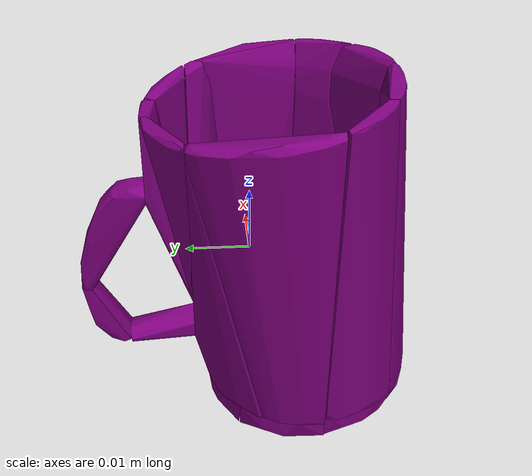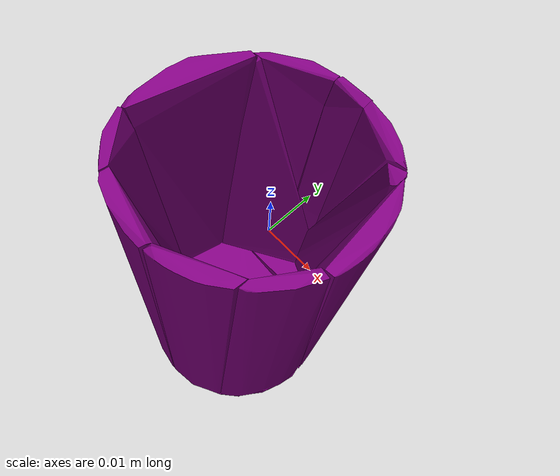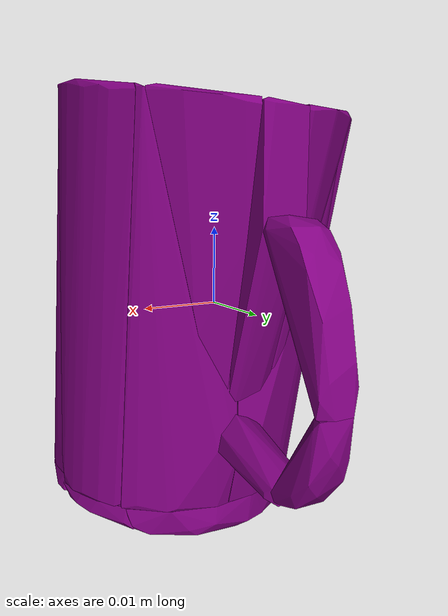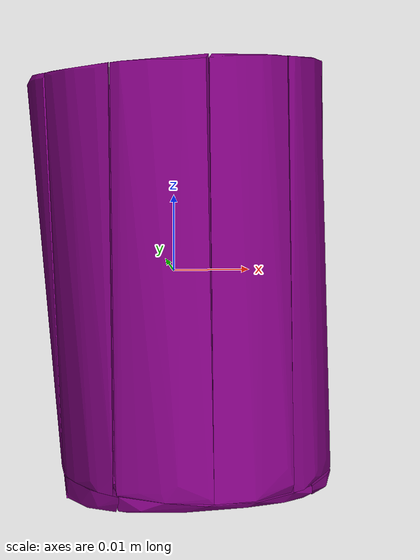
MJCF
<mujoco model="FlowerCup">
  <asset>
    <mesh file="meshes/FlowerCup/FlowerCup_0.stl" name="FlowerCup_0" scale="1.2 1.2 1.2"/>
    <mesh file="meshes/FlowerCup/FlowerCup_1.stl" name="FlowerCup_1" scale="1.2 1.2 1.2"/>
    <mesh file="meshes/FlowerCup/FlowerCup_2.stl" name="FlowerCup_2" scale="1.2 1.2 1.2"/>
    <mesh file="meshes/FlowerCup/FlowerCup_3.stl" name="FlowerCup_3" scale="1.2 1.2 1.2"/>
    <mesh file="meshes/FlowerCup/FlowerCup_4.stl" name="FlowerCup_4" scale="1.2 1.2 1.2"/>
    <mesh file="meshes/FlowerCup/FlowerCup_5.stl" name="FlowerCup_5" scale="1.2 1.2 1.2"/>
    <mesh file="meshes/FlowerCup/FlowerCup_6.stl" name="FlowerCup_6" scale="1.2 1.2 1.2"/>
    <mesh file="meshes/FlowerCup/FlowerCup_7.stl" name="FlowerCup_7" scale="1.2 1.2 1.2"/>
    <mesh file="meshes/FlowerCup/FlowerCup_8.stl" name="FlowerCup_8" scale="1.2 1.2 1.2"/>
    <mesh file="meshes/FlowerCup/FlowerCup_9.stl" name="FlowerCup_9" scale="1.2 1.2 1.2"/>
    <mesh file="meshes/FlowerCup/FlowerCup_10.stl" name="FlowerCup_10" scale="1.2 1.2 1.2"/>
    <mesh file="meshes/FlowerCup/FlowerCup_11.stl" name="FlowerCup_11" scale="1.2 1.2 1.2"/>
    <mesh file="meshes/FlowerCup/FlowerCup_12.stl" name="FlowerCup_12" scale="1.2 1.2 1.2"/>
    <mesh file="meshes/FlowerCup/FlowerCup_13.stl" name="FlowerCup_13" scale="1.2 1.2 1.2"/>
    <mesh file="meshes/FlowerCup/FlowerCup_14.stl" name="FlowerCup_14" scale="1.2 1.2 1.2"/>
    <mesh file="meshes/FlowerCup/FlowerCup_15.stl" name="FlowerCup_15" scale="1.2 1.2 1.2"/>
    <mesh file="meshes/FlowerCup/FlowerCup_16.stl" name="FlowerCup_16" scale="1.2 1.2 1.2"/>
    <mesh file="meshes/FlowerCup/FlowerCup_17.stl" name="FlowerCup_17" scale="1.2 1.2 1.2"/>
    <mesh file="meshes/FlowerCup/FlowerCup_18.stl" name="FlowerCup_18" scale="1.2 1.2 1.2"/>
    <mesh file="meshes/FlowerCup/FlowerCup_19.stl" name="FlowerCup_19" scale="1.2 1.2 1.2"/>
    <texture file="../textures/flowercup_0.png" name="tex-flowercup" />
    <material name="ceramic" reflectance="0.7" texrepeat="15 15" texture="tex-flowercup" texuniform="true"/>
  </asset>
  <worldbody>
    <body>
      <body name="collision">
        <geom condim="4" density="100" friction="1.8 0.3 0.1" group="1" mesh="FlowerCup_0" pos="0 0 0" solimp="0.998 0.998 0.001" solref="0.002 1" type="mesh" rgba="0.5 0 0.5 1"/>
        <geom condim="4" density="100" friction="1.8 0.3 0.1" group="1" mesh="FlowerCup_1" pos="0 0 0" solimp="0.998 0.998 0.001" solref="0.002 1" type="mesh" rgba="0.5 0 0.5 1"/>
        <geom condim="4" density="100" friction="1.8 0.3 0.1" group="1" mesh="FlowerCup_2" pos="0 0 0" solimp="0.998 0.998 0.001" solref="0.002 1" type="mesh" rgba="0.5 0 0.5 1"/>
        <geom condim="4" density="100" friction="1.8 0.3 0.1" group="1" mesh="FlowerCup_3" pos="0 0 0" solimp="0.998 0.998 0.001" solref="0.002 1" type="mesh" rgba="0.5 0 0.5 1"/>
        <geom condim="4" density="100" friction="1.8 0.3 0.1" group="1" mesh="FlowerCup_4" pos="0 0 0" solimp="0.998 0.998 0.001" solref="0.002 1" type="mesh" rgba="0.5 0 0.5 1"/>
        <geom condim="4" density="100" friction="1.8 0.3 0.1" group="1" mesh="FlowerCup_5" pos="0 0 0" solimp="0.998 0.998 0.001" solref="0.002 1" type="mesh" rgba="0.5 0 0.5 1"/>
        <geom condim="4" density="100" friction="1.8 0.3 0.1" group="1" mesh="FlowerCup_6" pos="0 0 0" solimp="0.998 0.998 0.001" solref="0.002 1" type="mesh" rgba="0.5 0 0.5 1"/>
        <geom condim="4" density="100" friction="1.8 0.3 0.1" group="1" mesh="FlowerCup_7" pos="0 0 0" solimp="0.998 0.998 0.001" solref="0.002 1" type="mesh" rgba="0.5 0 0.5 1"/>
        <geom condim="4" density="100" friction="1.8 0.3 0.1" group="1" mesh="FlowerCup_8" pos="0 0 0" solimp="0.998 0.998 0.001" solref="0.002 1" type="mesh" rgba="0.5 0 0.5 1"/>
        <geom condim="4" density="100" friction="1.8 0.3 0.1" group="1" mesh="FlowerCup_9" pos="0 0 0" solimp="0.998 0.998 0.001" solref="0.002 1" type="mesh" rgba="0.5 0 0.5 1"/>
        <geom condim="4" density="100" friction="1.8 0.3 0.1" group="1" mesh="FlowerCup_10" pos="0 0 0" solimp="0.998 0.998 0.001" solref="0.002 1" type="mesh" rgba="0.5 0 0.5 1"/>
        <geom condim="4" density="100" friction="1.8 0.3 0.1" group="1" mesh="FlowerCup_11" pos="0 0 0" solimp="0.998 0.998 0.001" solref="0.002 1" type="mesh" rgba="0.5 0 0.5 1"/>
        <geom condim="4" density="100" friction="1.8 0.3 0.1" group="1" mesh="FlowerCup_12" pos="0 0 0" solimp="0.998 0.998 0.001" solref="0.002 1" type="mesh" rgba="0.5 0 0.5 1"/>
        <geom condim="4" density="100" friction="1.8 0.3 0.1" group="1" mesh="FlowerCup_13" pos="0 0 0" solimp="0.998 0.998 0.001" solref="0.002 1" type="mesh" rgba="0.5 0 0.5 1"/>
        <geom condim="4" density="100" friction="1.8 0.3 0.1" group="1" mesh="FlowerCup_14" pos="0 0 0" solimp="0.998 0.998 0.001" solref="0.002 1" type="mesh" rgba="0.5 0 0.5 1"/>
        <geom condim="4" density="100" friction="1.8 0.3 0.1" group="1" mesh="FlowerCup_15" pos="0 0 0" solimp="0.998 0.998 0.001" solref="0.002 1" type="mesh" rgba="0.5 0 0.5 1"/>
        <geom condim="4" density="100" friction="1.8 0.3 0.1" group="1" mesh="FlowerCup_16" pos="0 0 0" solimp="0.998 0.998 0.001" solref="0.002 1" type="mesh" rgba="0.5 0 0.5 1"/>
        <geom condim="4" density="100" friction="1.8 0.3 0.1" group="1" mesh="FlowerCup_17" pos="0 0 0" solimp="0.998 0.998 0.001" solref="0.002 1" type="mesh" rgba="0.5 0 0.5 1"/>
        <geom condim="4" density="100" friction="1.8 0.3 0.1" group="1" mesh="FlowerCup_18" pos="0 0 0" solimp="0.998 0.998 0.001" solref="0.002 1" type="mesh" rgba="0.5 0 0.5 1"/>
        <geom condim="4" density="100" friction="1.8 0.3 0.1" group="1" mesh="FlowerCup_19" pos="0 0 0" solimp="0.998 0.998 0.001" solref="0.002 1" type="mesh" rgba="0.5 0 0.5 1"/>
      </body>
      <body name="visual">
        <geom conaffinity="0" contype="0" group="0" mass="0.0001" mesh="FlowerCup_0" pos="0 0 0" rgba="0 1 0 1" type="mesh"/>
        <geom conaffinity="0" contype="0" group="0" mass="0.0001" mesh="FlowerCup_1" pos="0 0 0" rgba="0 1 0 1" type="mesh"/>
        <geom conaffinity="0" contype="0" group="0" mass="0.0001" mesh="FlowerCup_2" pos="0 0 0" rgba="0 1 0 1" type="mesh"/>
        <geom conaffinity="0" contype="0" group="0" mass="0.0001" mesh="FlowerCup_3" pos="0 0 0" rgba="0 1 0 1" type="mesh"/>
        <geom conaffinity="0" contype="0" group="0" mass="0.0001" mesh="FlowerCup_4" pos="0 0 0" rgba="0 1 0 1" type="mesh"/>
        <geom conaffinity="0" contype="0" group="0" mass="0.0001" mesh="FlowerCup_5" pos="0 0 0" rgba="0 1 0 1" type="mesh"/>
        <geom conaffinity="0" contype="0" group="0" mass="0.0001" mesh="FlowerCup_6" pos="0 0 0" rgba="0 1 0 1" type="mesh"/>
        <geom conaffinity="0" contype="0" group="0" mass="0.0001" mesh="FlowerCup_7" pos="0 0 0" rgba="0 1 0 1" type="mesh"/>
        <geom conaffinity="0" contype="0" group="0" mass="0.0001" mesh="FlowerCup_8" pos="0 0 0" rgba="0 1 0 1" type="mesh"/>
        <geom conaffinity="0" contype="0" group="0" mass="0.0001" mesh="FlowerCup_9" pos="0 0 0" rgba="0 1 0 1" type="mesh"/>
        <geom conaffinity="0" contype="0" group="0" mass="0.0001" mesh="FlowerCup_10" pos="0 0 0" rgba="0 1 0 1" type="mesh"/>
        <geom conaffinity="0" contype="0" group="0" mass="0.0001" mesh="FlowerCup_11" pos="0 0 0" rgba="0 1 0 1" type="mesh"/>
        <geom conaffinity="0" contype="0" group="0" mass="0.0001" mesh="FlowerCup_12" pos="0 0 0" rgba="0 1 0 1" type="mesh"/>
        <geom conaffinity="0" contype="0" group="0" mass="0.0001" mesh="FlowerCup_13" pos="0 0 0" rgba="0 1 0 1" type="mesh"/>
        <geom conaffinity="0" contype="0" group="0" mass="0.0001" mesh="FlowerCup_14" pos="0 0 0" rgba="0 1 0 1" type="mesh"/>
        <geom conaffinity="0" contype="0" group="0" mass="0.0001" mesh="FlowerCup_15" pos="0 0 0" rgba="0 1 0 1" type="mesh"/>
        <geom conaffinity="0" contype="0" group="0" mass="0.0001" mesh="FlowerCup_16" pos="0 0 0" rgba="0 1 0 1" type="mesh"/>
        <geom conaffinity="0" contype="0" group="0" mass="0.0001" mesh="FlowerCup_17" pos="0 0 0" rgba="0 1 0 1" type="mesh"/>
        <geom conaffinity="0" contype="0" group="0" mass="0.0001" mesh="FlowerCup_18" pos="0 0 0" rgba="0 1 0 1" type="mesh"/>
        <geom conaffinity="0" contype="0" group="0" mass="0.0001" mesh="FlowerCup_19" pos="0 0 0" rgba="0 1 0 1" type="mesh"/>
      </body>
      <site name="bottom_site" pos="0 0 -0.06" rgba="0 0 0 0" size="0.005"/>
      <site name="top_site" pos="0 0 0.04" rgba="0 0 0 0" size="0.005"/>
      <site name="horizontal_radius_site" pos="0.025 0.025 0" rgba="0 0 0 0" size="0.005"/>
    </body>
  </worldbody>
</mujoco>
